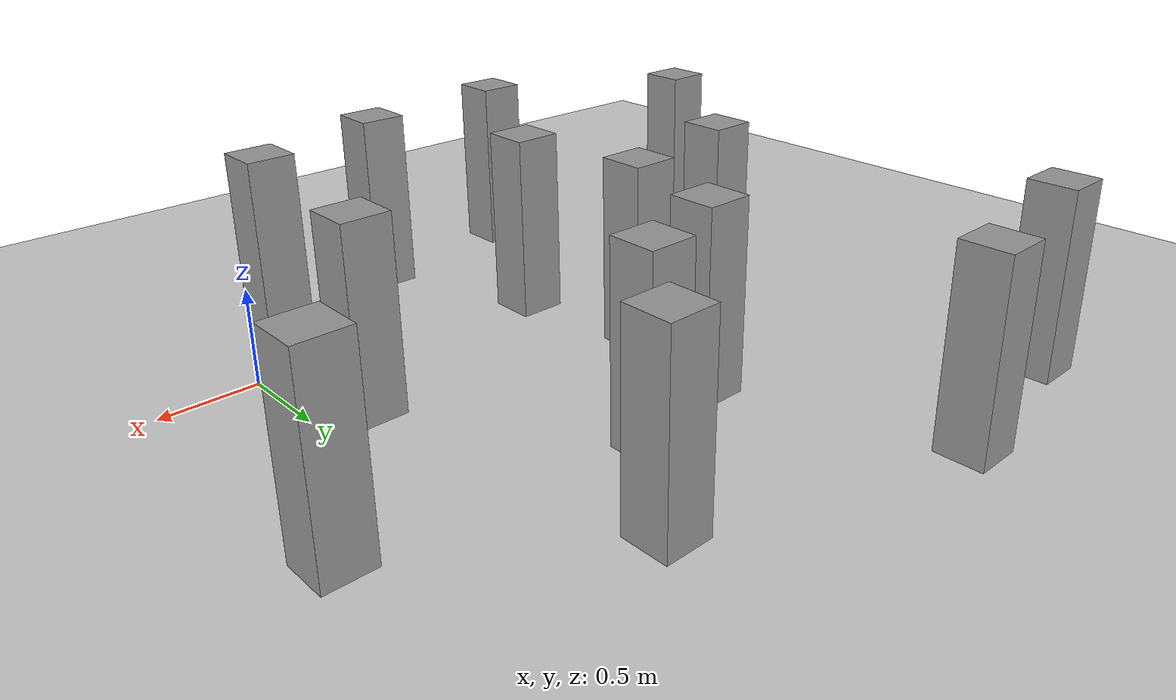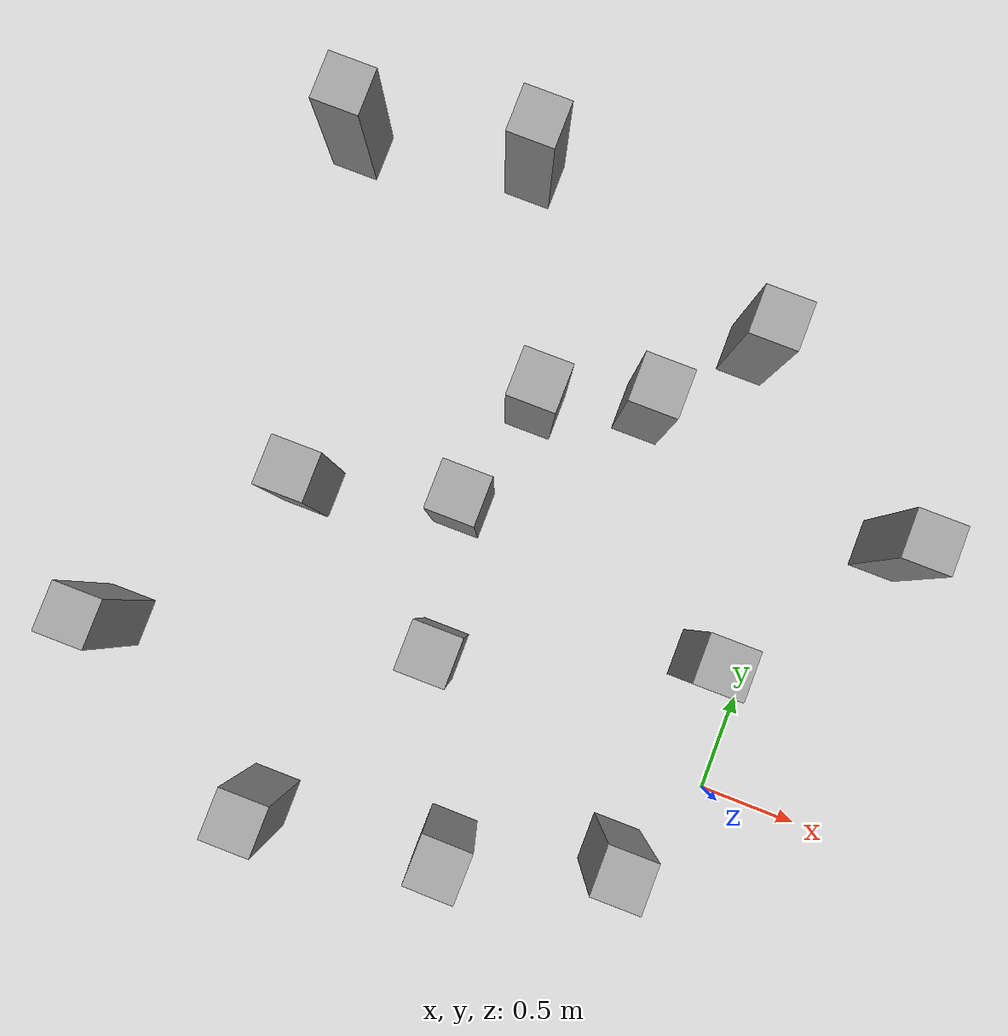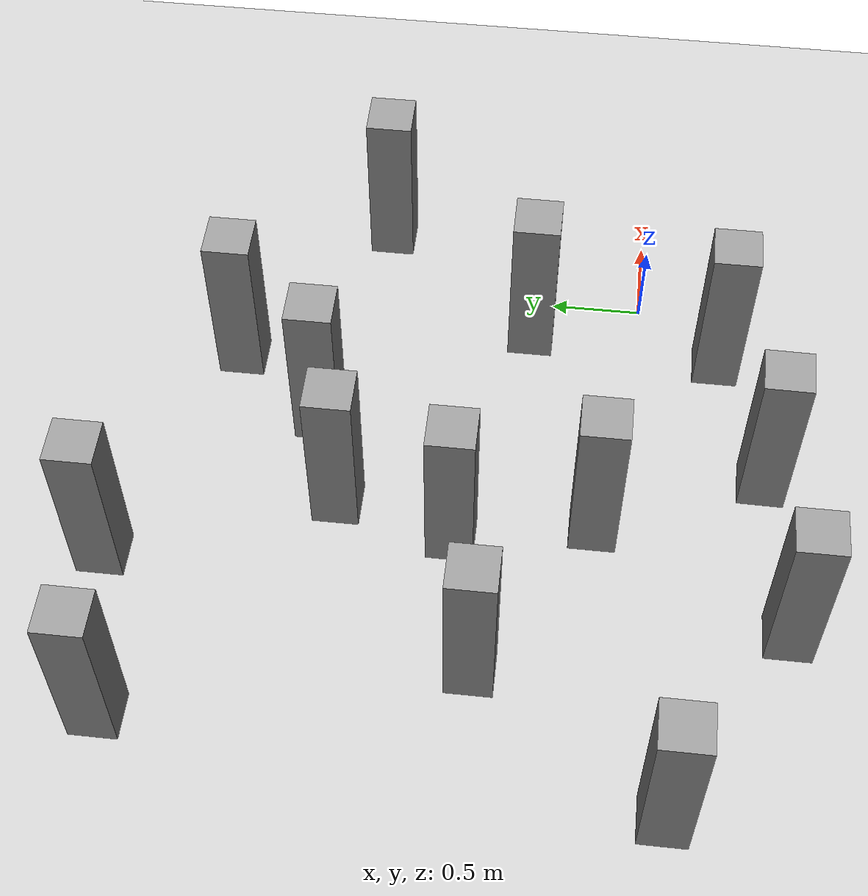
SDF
<sdf version="1.7">
 <world name="default">
  <model name="ground_plane">
   <static>1</static>
   <link name="link">
    <collision name="collision">
     <geometry><plane><normal>0 0 1</normal><size>100 100</size></plane></geometry>
     <surface><friction><ode><mu>100</mu><mu2>50</mu2></ode></friction></surface>
    </collision>
    <visual name="visual">
     <cast_shadows>0</cast_shadows>
     <geometry><plane><normal>0 0 1</normal><size>100 100</size></plane></geometry>
     <material>
      <script><uri>file://media/materials/scripts/gazebo.material</uri><name>Gazebo/Grey</name></script>
     </material>
    </visual>
   </link>
  </model>
  <model name="unit_box">
   <link name="link">
    <inertial>
     <mass>1</mass>
     <inertia>
      <ixx>0.166667</ixx>
      <ixy>0</ixy>
      <ixz>0</ixz>
      <iyy>0.166667</iyy>
      <iyz>0</iyz>
      <izz>0.166667</izz>
     </inertia>
    </inertial>
    <pose>-0.617061 0 -0 0 -0 0</pose>
    <visual name="visual">
     <geometry><box><size>0.25 0.25 1</size></box></geometry>
     <material>
      <script><name>Gazebo/Grey</name><uri>file://media/materials/scripts/gazebo.material</uri></script>
      <shader type="pixel"><normal_map>__default__</normal_map></shader>
      <ambient>0.3 0.3 0.3 1</ambient>
      <diffuse>0.7 0.7 0.7 1</diffuse>
      <specular>0.01 0.01 0.01 1</specular>
      <emissive>0 0 0 1</emissive>
     </material>
    </visual>
    <collision name="collision">
     <geometry><box><size>0.25 0.25 1</size></box></geometry>
     <surface>
      <friction>
       <ode><mu>1</mu><mu2>1</mu2><fdir1>0 0 0</fdir1><slip1>0</slip1><slip2>0</slip2></ode>
       <torsional>
        <coefficient>1</coefficient>
        <patch_radius>0</patch_radius>
        <surface_radius>0</surface_radius>
        <use_patch_radius>1</use_patch_radius>
        <ode><slip>0</slip></ode>
       </torsional>
      </friction>
      <bounce><restitution_coefficient>0</restitution_coefficient><threshold>1e+06</threshold></bounce>
      <contact>
       <collide_without_contact>0</collide_without_contact>
       <collide_without_contact_bitmask>1</collide_without_contact_bitmask>
       <collide_bitmask>1</collide_bitmask>
       <ode>
        <soft_cfm>0</soft_cfm>
        <soft_erp>0.2</soft_erp>
        <kp>1e+13</kp>
        <kd>1</kd>
        <max_vel>0.01</max_vel>
        <min_depth>0</min_depth>
       </ode>
       <bullet>
        <split_impulse>1</split_impulse>
        <split_impulse_penetration_threshold>-0.01</split_impulse_penetration_threshold>
        <soft_cfm>0</soft_cfm>
        <soft_erp>0.2</soft_erp>
        <kp>1e+13</kp>
        <kd>1</kd>
       </bullet>
      </contact>
     </surface>
    </collision>
   </link>
   <static>0</static>
   <pose>0.049892 2.22879 0.5 -2e-06 1e-06 2.7e-05</pose>
  </model>
  <model name="unit_box_clone">
   <link name="link">
    <inertial>
     <mass>1</mass>
     <inertia>
      <ixx>0.166667</ixx>
      <ixy>0</ixy>
      <ixz>0</ixz>
      <iyy>0.166667</iyy>
      <iyz>0</iyz>
      <izz>0.166667</izz>
     </inertia>
    </inertial>
    <pose>-0.617061 0 -0 0 -0 0</pose>
    <visual name="visual">
     <geometry><box><size>0.25 0.25 1</size></box></geometry>
     <material>
      <script><name>Gazebo/Grey</name><uri>file://media/materials/scripts/gazebo.material</uri></script>
      <shader type="pixel"><normal_map>__default__</normal_map></shader>
      <ambient>0.3 0.3 0.3 1</ambient>
      <diffuse>0.7 0.7 0.7 1</diffuse>
      <specular>0.01 0.01 0.01 1</specular>
      <emissive>0 0 0 1</emissive>
     </material>
    </visual>
    <collision name="collision">
     <geometry><box><size>0.25 0.25 1</size></box></geometry>
     <surface>
      <friction>
       <ode><mu>1</mu><mu2>1</mu2><fdir1>0 0 0</fdir1><slip1>0</slip1><slip2>0</slip2></ode>
       <torsional>
        <coefficient>1</coefficient>
        <patch_radius>0</patch_radius>
        <surface_radius>0</surface_radius>
        <use_patch_radius>1</use_patch_radius>
        <ode><slip>0</slip></ode>
       </torsional>
      </friction>
      <bounce><restitution_coefficient>0</restitution_coefficient><threshold>1e+06</threshold></bounce>
      <contact>
       <collide_without_contact>0</collide_without_contact>
       <collide_without_contact_bitmask>1</collide_without_contact_bitmask>
       <collide_bitmask>1</collide_bitmask>
       <ode>
        <soft_cfm>0</soft_cfm>
        <soft_erp>0.2</soft_erp>
        <kp>1e+13</kp>
        <kd>1</kd>
        <max_vel>0.01</max_vel>
        <min_depth>0</min_depth>
       </ode>
       <bullet>
        <split_impulse>1</split_impulse>
        <split_impulse_penetration_threshold>-0.01</split_impulse_penetration_threshold>
        <soft_cfm>0</soft_cfm>
        <soft_erp>0.2</soft_erp>
        <kp>1e+13</kp>
        <kd>1</kd>
       </bullet>
      </contact>
     </surface>
    </collision>
   </link>
   <static>0</static>
   <pose>1.06352 1.49333 0.5 2e-06 -1e-06 6.5e-05</pose>
  </model>
  <model name="unit_box_clone_0">
   <link name="link">
    <inertial>
     <mass>1</mass>
     <inertia>
      <ixx>0.166667</ixx>
      <ixy>0</ixy>
      <ixz>0</ixz>
      <iyy>0.166667</iyy>
      <iyz>0</iyz>
      <izz>0.166667</izz>
     </inertia>
    </inertial>
    <pose>-0.617061 0 -0 0 -0 0</pose>
    <visual name="visual">
     <geometry><box><size>0.25 0.25 1</size></box></geometry>
     <material>
      <script><name>Gazebo/Grey</name><uri>file://media/materials/scripts/gazebo.material</uri></script>
      <shader type="pixel"><normal_map>__default__</normal_map></shader>
      <ambient>0.3 0.3 0.3 1</ambient>
      <diffuse>0.7 0.7 0.7 1</diffuse>
      <specular>0.01 0.01 0.01 1</specular>
      <emissive>0 0 0 1</emissive>
     </material>
    </visual>
    <collision name="collision">
     <geometry><box><size>0.25 0.25 1</size></box></geometry>
     <surface>
      <friction>
       <ode><mu>1</mu><mu2>1</mu2><fdir1>0 0 0</fdir1><slip1>0</slip1><slip2>0</slip2></ode>
       <torsional>
        <coefficient>1</coefficient>
        <patch_radius>0</patch_radius>
        <surface_radius>0</surface_radius>
        <use_patch_radius>1</use_patch_radius>
        <ode><slip>0</slip></ode>
       </torsional>
      </friction>
      <bounce><restitution_coefficient>0</restitution_coefficient><threshold>1e+06</threshold></bounce>
      <contact>
       <collide_without_contact>0</collide_without_contact>
       <collide_without_contact_bitmask>1</collide_without_contact_bitmask>
       <collide_bitmask>1</collide_bitmask>
       <ode>
        <soft_cfm>0</soft_cfm>
        <soft_erp>0.2</soft_erp>
        <kp>1e+13</kp>
        <kd>1</kd>
        <max_vel>0.01</max_vel>
        <min_depth>0</min_depth>
       </ode>
       <bullet>
        <split_impulse>1</split_impulse>
        <split_impulse_penetration_threshold>-0.01</split_impulse_penetration_threshold>
        <soft_cfm>0</soft_cfm>
        <soft_erp>0.2</soft_erp>
        <kp>1e+13</kp>
        <kd>1</kd>
       </bullet>
      </contact>
     </surface>
    </collision>
   </link>
   <static>0</static>
   <pose>0.366947 0.612786 0.500001 -1e-06 -2e-06 3e-05</pose>
  </model>
  <model name="unit_box_clone_0_clone">
   <link name="link">
    <inertial>
     <mass>1</mass>
     <inertia>
      <ixx>0.166667</ixx>
      <ixy>0</ixy>
      <ixz>0</ixz>
      <iyy>0.166667</iyy>
      <iyz>0</iyz>
      <izz>0.166667</izz>
     </inertia>
    </inertial>
    <pose>-0.617061 0 -0 0 -0 0</pose>
    <visual name="visual">
     <geometry><box><size>0.25 0.25 1</size></box></geometry>
     <material>
      <script><name>Gazebo/Grey</name><uri>file://media/materials/scripts/gazebo.material</uri></script>
      <shader type="pixel"><normal_map>__default__</normal_map></shader>
      <ambient>0.3 0.3 0.3 1</ambient>
      <diffuse>0.7 0.7 0.7 1</diffuse>
      <specular>0.01 0.01 0.01 1</specular>
      <emissive>0 0 0 1</emissive>
     </material>
    </visual>
    <collision name="collision">
     <geometry><box><size>0.25 0.25 1</size></box></geometry>
     <surface>
      <friction>
       <ode><mu>1</mu><mu2>1</mu2><fdir1>0 0 0</fdir1><slip1>0</slip1><slip2>0</slip2></ode>
       <torsional>
        <coefficient>1</coefficient>
        <patch_radius>0</patch_radius>
        <surface_radius>0</surface_radius>
        <use_patch_radius>1</use_patch_radius>
        <ode><slip>0</slip></ode>
       </torsional>
      </friction>
      <bounce><restitution_coefficient>0</restitution_coefficient><threshold>1e+06</threshold></bounce>
      <contact>
       <collide_without_contact>0</collide_without_contact>
       <collide_without_contact_bitmask>1</collide_without_contact_bitmask>
       <collide_bitmask>1</collide_bitmask>
       <ode>
        <soft_cfm>0</soft_cfm>
        <soft_erp>0.2</soft_erp>
        <kp>1e+13</kp>
        <kd>1</kd>
        <max_vel>0.01</max_vel>
        <min_depth>0</min_depth>
       </ode>
       <bullet>
        <split_impulse>1</split_impulse>
        <split_impulse_penetration_threshold>-0.01</split_impulse_penetration_threshold>
        <soft_cfm>0</soft_cfm>
        <soft_erp>0.2</soft_erp>
        <kp>1e+13</kp>
        <kd>1</kd>
       </bullet>
      </contact>
     </surface>
    </collision>
   </link>
   <static>0</static>
   <pose>-0.905234 1.55149 0.5 -2e-06 1e-06 2.8e-05</pose>
  </model>
  <model name="unit_box_clone_0_clone_0">
   <link name="link">
    <inertial>
     <mass>1</mass>
     <inertia>
      <ixx>0.166667</ixx>
      <ixy>0</ixy>
      <ixz>0</ixz>
      <iyy>0.166667</iyy>
      <iyz>0</iyz>
      <izz>0.166667</izz>
     </inertia>
    </inertial>
    <pose>-0.617061 0 -0 0 -0 0</pose>
    <visual name="visual">
     <geometry><box><size>0.25 0.25 1</size></box></geometry>
     <material>
      <script><name>Gazebo/Grey</name><uri>file://media/materials/scripts/gazebo.material</uri></script>
      <shader type="pixel"><normal_map>__default__</normal_map></shader>
      <ambient>0.3 0.3 0.3 1</ambient>
      <diffuse>0.7 0.7 0.7 1</diffuse>
      <specular>0.01 0.01 0.01 1</specular>
      <emissive>0 0 0 1</emissive>
     </material>
    </visual>
    <collision name="collision">
     <geometry><box><size>0.25 0.25 1</size></box></geometry>
     <surface>
      <friction>
       <ode><mu>1</mu><mu2>1</mu2><fdir1>0 0 0</fdir1><slip1>0</slip1><slip2>0</slip2></ode>
       <torsional>
        <coefficient>1</coefficient>
        <patch_radius>0</patch_radius>
        <surface_radius>0</surface_radius>
        <use_patch_radius>1</use_patch_radius>
        <ode><slip>0</slip></ode>
       </torsional>
      </friction>
      <bounce><restitution_coefficient>0</restitution_coefficient><threshold>1e+06</threshold></bounce>
      <contact>
       <collide_without_contact>0</collide_without_contact>
       <collide_without_contact_bitmask>1</collide_without_contact_bitmask>
       <collide_bitmask>1</collide_bitmask>
       <ode>
        <soft_cfm>0</soft_cfm>
        <soft_erp>0.2</soft_erp>
        <kp>1e+13</kp>
        <kd>1</kd>
        <max_vel>0.01</max_vel>
        <min_depth>0</min_depth>
       </ode>
       <bullet>
        <split_impulse>1</split_impulse>
        <split_impulse_penetration_threshold>-0.01</split_impulse_penetration_threshold>
        <soft_cfm>0</soft_cfm>
        <soft_erp>0.2</soft_erp>
        <kp>1e+13</kp>
        <kd>1</kd>
       </bullet>
      </contact>
     </surface>
    </collision>
   </link>
   <static>0</static>
   <pose>-1.852 0.745775 0.499998 1e-06 2e-06 7.4e-05</pose>
  </model>
  <model name="unit_box_clone_0_clone_1">
   <link name="link">
    <inertial>
     <mass>1</mass>
     <inertia>
      <ixx>0.166667</ixx>
      <ixy>0</ixy>
      <ixz>0</ixz>
      <iyy>0.166667</iyy>
      <iyz>0</iyz>
      <izz>0.166667</izz>
     </inertia>
    </inertial>
    <pose>-0.617061 0 -0 0 -0 0</pose>
    <visual name="visual">
     <geometry><box><size>0.25 0.25 1</size></box></geometry>
     <material>
      <script><name>Gazebo/Grey</name><uri>file://media/materials/scripts/gazebo.material</uri></script>
      <shader type="pixel"><normal_map>__default__</normal_map></shader>
      <ambient>0.3 0.3 0.3 1</ambient>
      <diffuse>0.7 0.7 0.7 1</diffuse>
      <specular>0.01 0.01 0.01 1</specular>
      <emissive>0 0 0 1</emissive>
     </material>
    </visual>
    <collision name="collision">
     <geometry><box><size>0.25 0.25 1</size></box></geometry>
     <surface>
      <friction>
       <ode><mu>1</mu><mu2>1</mu2><fdir1>0 0 0</fdir1><slip1>0</slip1><slip2>0</slip2></ode>
       <torsional>
        <coefficient>1</coefficient>
        <patch_radius>0</patch_radius>
        <surface_radius>0</surface_radius>
        <use_patch_radius>1</use_patch_radius>
        <ode><slip>0</slip></ode>
       </torsional>
      </friction>
      <bounce><restitution_coefficient>0</restitution_coefficient><threshold>1e+06</threshold></bounce>
      <contact>
       <collide_without_contact>0</collide_without_contact>
       <collide_without_contact_bitmask>1</collide_without_contact_bitmask>
       <collide_bitmask>1</collide_bitmask>
       <ode>
        <soft_cfm>0</soft_cfm>
        <soft_erp>0.2</soft_erp>
        <kp>1e+13</kp>
        <kd>1</kd>
        <max_vel>0.01</max_vel>
        <min_depth>0</min_depth>
       </ode>
       <bullet>
        <split_impulse>1</split_impulse>
        <split_impulse_penetration_threshold>-0.01</split_impulse_penetration_threshold>
        <soft_cfm>0</soft_cfm>
        <soft_erp>0.2</soft_erp>
        <kp>1e+13</kp>
        <kd>1</kd>
       </bullet>
      </contact>
     </surface>
    </collision>
   </link>
   <static>0</static>
   <pose>-2.28004 2.54756 0.499998 -1e-06 2e-06 6.3e-05</pose>
  </model>
  <model name="unit_box_clone_0_clone_2">
   <link name="link">
    <inertial>
     <mass>1</mass>
     <inertia>
      <ixx>0.166667</ixx>
      <ixy>0</ixy>
      <ixz>0</ixz>
      <iyy>0.166667</iyy>
      <iyz>0</iyz>
      <izz>0.166667</izz>
     </inertia>
    </inertial>
    <pose>-0.617061 0 -0 0 -0 0</pose>
    <visual name="visual">
     <geometry><box><size>0.25 0.25 1</size></box></geometry>
     <material>
      <script><name>Gazebo/Grey</name><uri>file://media/materials/scripts/gazebo.material</uri></script>
      <shader type="pixel"><normal_map>__default__</normal_map></shader>
      <ambient>0.3 0.3 0.3 1</ambient>
      <diffuse>0.7 0.7 0.7 1</diffuse>
      <specular>0.01 0.01 0.01 1</specular>
      <emissive>0 0 0 1</emissive>
     </material>
    </visual>
    <collision name="collision">
     <geometry><box><size>0.25 0.25 1</size></box></geometry>
     <surface>
      <friction>
       <ode><mu>1</mu><mu2>1</mu2><fdir1>0 0 0</fdir1><slip1>0</slip1><slip2>0</slip2></ode>
       <torsional>
        <coefficient>1</coefficient>
        <patch_radius>0</patch_radius>
        <surface_radius>0</surface_radius>
        <use_patch_radius>1</use_patch_radius>
        <ode><slip>0</slip></ode>
       </torsional>
      </friction>
      <bounce><restitution_coefficient>0</restitution_coefficient><threshold>1e+06</threshold></bounce>
      <contact>
       <collide_without_contact>0</collide_without_contact>
       <collide_without_contact_bitmask>1</collide_without_contact_bitmask>
       <collide_bitmask>1</collide_bitmask>
       <ode>
        <soft_cfm>0</soft_cfm>
        <soft_erp>0.2</soft_erp>
        <kp>1e+13</kp>
        <kd>1</kd>
        <max_vel>0.01</max_vel>
        <min_depth>0</min_depth>
       </ode>
       <bullet>
        <split_impulse>1</split_impulse>
        <split_impulse_penetration_threshold>-0.01</split_impulse_penetration_threshold>
        <soft_cfm>0</soft_cfm>
        <soft_erp>0.2</soft_erp>
        <kp>1e+13</kp>
        <kd>1</kd>
       </bullet>
      </contact>
     </surface>
    </collision>
   </link>
   <static>0</static>
   <pose>-0.363541 1.7294 0.5 2e-06 -0 7.5e-05</pose>
  </model>
  <model name="unit_box_clone_0_clone_3">
   <link name="link">
    <inertial>
     <mass>1</mass>
     <inertia>
      <ixx>0.166667</ixx>
      <ixy>0</ixy>
      <ixz>0</ixz>
      <iyy>0.166667</iyy>
      <iyz>0</iyz>
      <izz>0.166667</izz>
     </inertia>
    </inertial>
    <pose>-0.617061 0 -0 0 -0 0</pose>
    <visual name="visual">
     <geometry><box><size>0.25 0.25 1</size></box></geometry>
     <material>
      <script><name>Gazebo/Grey</name><uri>file://media/materials/scripts/gazebo.material</uri></script>
      <shader type="pixel"><normal_map>__default__</normal_map></shader>
      <ambient>0.3 0.3 0.3 1</ambient>
      <diffuse>0.7 0.7 0.7 1</diffuse>
      <specular>0.01 0.01 0.01 1</specular>
      <emissive>0 0 0 1</emissive>
     </material>
    </visual>
    <collision name="collision">
     <geometry><box><size>0.25 0.25 1</size></box></geometry>
     <surface>
      <friction>
       <ode><mu>1</mu><mu2>1</mu2><fdir1>0 0 0</fdir1><slip1>0</slip1><slip2>0</slip2></ode>
       <torsional>
        <coefficient>1</coefficient>
        <patch_radius>0</patch_radius>
        <surface_radius>0</surface_radius>
        <use_patch_radius>1</use_patch_radius>
        <ode><slip>0</slip></ode>
       </torsional>
      </friction>
      <bounce><restitution_coefficient>0</restitution_coefficient><threshold>1e+06</threshold></bounce>
      <contact>
       <collide_without_contact>0</collide_without_contact>
       <collide_without_contact_bitmask>1</collide_without_contact_bitmask>
       <collide_bitmask>1</collide_bitmask>
       <ode>
        <soft_cfm>0</soft_cfm>
        <soft_erp>0.2</soft_erp>
        <kp>1e+13</kp>
        <kd>1</kd>
        <max_vel>0.01</max_vel>
        <min_depth>0</min_depth>
       </ode>
       <bullet>
        <split_impulse>1</split_impulse>
        <split_impulse_penetration_threshold>-0.01</split_impulse_penetration_threshold>
        <soft_cfm>0</soft_cfm>
        <soft_erp>0.2</soft_erp>
        <kp>1e+13</kp>
        <kd>1</kd>
       </bullet>
      </contact>
     </surface>
    </collision>
   </link>
   <static>0</static>
   <pose>-0.930949 0.18348 0.500001 1e-06 -1e-06 4.3e-05</pose>
  </model>
  <model name="unit_box_clone_0_clone_2_clone">
   <link name="link">
    <inertial>
     <mass>1</mass>
     <inertia>
      <ixx>0.166667</ixx>
      <ixy>0</ixy>
      <ixz>0</ixz>
      <iyy>0.166667</iyy>
      <iyz>0</iyz>
      <izz>0.166667</izz>
     </inertia>
    </inertial>
    <pose>-0.617061 0 -0 0 -0 0</pose>
    <visual name="visual">
     <geometry><box><size>0.25 0.25 1</size></box></geometry>
     <material>
      <script><name>Gazebo/Grey</name><uri>file://media/materials/scripts/gazebo.material</uri></script>
      <shader type="pixel"><normal_map>__default__</normal_map></shader>
      <ambient>0.3 0.3 0.3 1</ambient>
      <diffuse>0.7 0.7 0.7 1</diffuse>
      <specular>0.01 0.01 0.01 1</specular>
      <emissive>0 0 0 1</emissive>
     </material>
    </visual>
    <collision name="collision">
     <geometry><box><size>0.25 0.25 1</size></box></geometry>
     <surface>
      <friction>
       <ode><mu>1</mu><mu2>1</mu2><fdir1>0 0 0</fdir1><slip1>0</slip1><slip2>0</slip2></ode>
       <torsional>
        <coefficient>1</coefficient>
        <patch_radius>0</patch_radius>
        <surface_radius>0</surface_radius>
        <use_patch_radius>1</use_patch_radius>
        <ode><slip>0</slip></ode>
       </torsional>
      </friction>
      <bounce><restitution_coefficient>0</restitution_coefficient><threshold>1e+06</threshold></bounce>
      <contact>
       <collide_without_contact>0</collide_without_contact>
       <collide_without_contact_bitmask>1</collide_without_contact_bitmask>
       <collide_bitmask>1</collide_bitmask>
       <ode>
        <soft_cfm>0</soft_cfm>
        <soft_erp>0.2</soft_erp>
        <kp>1e+13</kp>
        <kd>1</kd>
        <max_vel>0.01</max_vel>
        <min_depth>0</min_depth>
       </ode>
       <bullet>
        <split_impulse>1</split_impulse>
        <split_impulse_penetration_threshold>-0.01</split_impulse_penetration_threshold>
        <soft_cfm>0</soft_cfm>
        <soft_erp>0.2</soft_erp>
        <kp>1e+13</kp>
        <kd>1</kd>
       </bullet>
      </contact>
     </surface>
    </collision>
   </link>
   <static>0</static>
   <pose>-1.07026 0.924101 0.5 2e-06 -0 7.1e-05</pose>
  </model>
  <model name="unit_box_clone_0_clone_2_clone_0">
   <link name="link">
    <inertial>
     <mass>1</mass>
     <inertia>
      <ixx>0.166667</ixx>
      <ixy>0</ixy>
      <ixz>0</ixz>
      <iyy>0.166667</iyy>
      <iyz>0</iyz>
      <izz>0.166667</izz>
     </inertia>
    </inertial>
    <pose>-0.617061 0 -0 0 -0 0</pose>
    <visual name="visual">
     <geometry><box><size>0.25 0.25 1</size></box></geometry>
     <material>
      <script><name>Gazebo/Grey</name><uri>file://media/materials/scripts/gazebo.material</uri></script>
      <shader type="pixel"><normal_map>__default__</normal_map></shader>
      <ambient>0.3 0.3 0.3 1</ambient>
      <diffuse>0.7 0.7 0.7 1</diffuse>
      <specular>0.01 0.01 0.01 1</specular>
      <emissive>0 0 0 1</emissive>
     </material>
    </visual>
    <collision name="collision">
     <geometry><box><size>0.25 0.25 1</size></box></geometry>
     <surface>
      <friction>
       <ode><mu>1</mu><mu2>1</mu2><fdir1>0 0 0</fdir1><slip1>0</slip1><slip2>0</slip2></ode>
       <torsional>
        <coefficient>1</coefficient>
        <patch_radius>0</patch_radius>
        <surface_radius>0</surface_radius>
        <use_patch_radius>1</use_patch_radius>
        <ode><slip>0</slip></ode>
       </torsional>
      </friction>
      <bounce><restitution_coefficient>0</restitution_coefficient><threshold>1e+06</threshold></bounce>
      <contact>
       <collide_without_contact>0</collide_without_contact>
       <collide_without_contact_bitmask>1</collide_without_contact_bitmask>
       <collide_bitmask>1</collide_bitmask>
       <ode>
        <soft_cfm>0</soft_cfm>
        <soft_erp>0.2</soft_erp>
        <kp>1e+13</kp>
        <kd>1</kd>
        <max_vel>0.01</max_vel>
        <min_depth>0</min_depth>
       </ode>
       <bullet>
        <split_impulse>1</split_impulse>
        <split_impulse_penetration_threshold>-0.01</split_impulse_penetration_threshold>
        <soft_cfm>0</soft_cfm>
        <soft_erp>0.2</soft_erp>
        <kp>1e+13</kp>
        <kd>1</kd>
       </bullet>
      </contact>
     </surface>
    </collision>
   </link>
   <static>0</static>
   <pose>-1.35376 2.72909 0.500001 -1e-06 -2e-06 2.9e-05</pose>
  </model>
  <model name="unit_box_clone_0_clone_3_clone">
   <link name="link">
    <inertial>
     <mass>1</mass>
     <inertia>
      <ixx>0.166667</ixx>
      <ixy>0</ixy>
      <ixz>0</ixz>
      <iyy>0.166667</iyy>
      <iyz>0</iyz>
      <izz>0.166667</izz>
     </inertia>
    </inertial>
    <pose>-0.617061 0 -0 0 -0 0</pose>
    <visual name="visual">
     <geometry><box><size>0.25 0.25 1</size></box></geometry>
     <material>
      <script><name>Gazebo/Grey</name><uri>file://media/materials/scripts/gazebo.material</uri></script>
      <shader type="pixel"><normal_map>__default__</normal_map></shader>
      <ambient>0.3 0.3 0.3 1</ambient>
      <diffuse>0.7 0.7 0.7 1</diffuse>
      <specular>0.01 0.01 0.01 1</specular>
      <emissive>0 0 0 1</emissive>
     </material>
    </visual>
    <collision name="collision">
     <geometry><box><size>0.25 0.25 1</size></box></geometry>
     <surface>
      <friction>
       <ode><mu>1</mu><mu2>1</mu2><fdir1>0 0 0</fdir1><slip1>0</slip1><slip2>0</slip2></ode>
       <torsional>
        <coefficient>1</coefficient>
        <patch_radius>0</patch_radius>
        <surface_radius>0</surface_radius>
        <use_patch_radius>1</use_patch_radius>
        <ode><slip>0</slip></ode>
       </torsional>
      </friction>
      <bounce><restitution_coefficient>0</restitution_coefficient><threshold>1e+06</threshold></bounce>
      <contact>
       <collide_without_contact>0</collide_without_contact>
       <collide_without_contact_bitmask>1</collide_without_contact_bitmask>
       <collide_bitmask>1</collide_bitmask>
       <ode>
        <soft_cfm>0</soft_cfm>
        <soft_erp>0.2</soft_erp>
        <kp>1e+13</kp>
        <kd>1</kd>
        <max_vel>0.01</max_vel>
        <min_depth>0</min_depth>
       </ode>
       <bullet>
        <split_impulse>1</split_impulse>
        <split_impulse_penetration_threshold>-0.01</split_impulse_penetration_threshold>
        <soft_cfm>0</soft_cfm>
        <soft_erp>0.2</soft_erp>
        <kp>1e+13</kp>
        <kd>1</kd>
       </bullet>
      </contact>
     </surface>
    </collision>
   </link>
   <static>0</static>
   <pose>-0.544838 -0.70938 0.499998 1e-06 2e-06 -0.01107</pose>
  </model>
  <model name="unit_box_clone_0_clone_3_clone_0">
   <link name="link">
    <inertial>
     <mass>1</mass>
     <inertia>
      <ixx>0.166667</ixx>
      <ixy>0</ixy>
      <ixz>0</ixz>
      <iyy>0.166667</iyy>
      <iyz>0</iyz>
      <izz>0.166667</izz>
     </inertia>
    </inertial>
    <pose>-0.617061 0 -0 0 -0 0</pose>
    <visual name="visual">
     <geometry><box><size>0.25 0.25 1</size></box></geometry>
     <material>
      <script><name>Gazebo/Grey</name><uri>file://media/materials/scripts/gazebo.material</uri></script>
      <shader type="pixel"><normal_map>__default__</normal_map></shader>
      <ambient>0.3 0.3 0.3 1</ambient>
      <diffuse>0.7 0.7 0.7 1</diffuse>
      <specular>0.01 0.01 0.01 1</specular>
      <emissive>0 0 0 1</emissive>
     </material>
    </visual>
    <collision name="collision">
     <geometry><box><size>0.25 0.25 1</size></box></geometry>
     <surface>
      <friction>
       <ode><mu>1</mu><mu2>1</mu2><fdir1>0 0 0</fdir1><slip1>0</slip1><slip2>0</slip2></ode>
       <torsional>
        <coefficient>1</coefficient>
        <patch_radius>0</patch_radius>
        <surface_radius>0</surface_radius>
        <use_patch_radius>1</use_patch_radius>
        <ode><slip>0</slip></ode>
       </torsional>
      </friction>
      <bounce><restitution_coefficient>0</restitution_coefficient><threshold>1e+06</threshold></bounce>
      <contact>
       <collide_without_contact>0</collide_without_contact>
       <collide_without_contact_bitmask>1</collide_without_contact_bitmask>
       <collide_bitmask>1</collide_bitmask>
       <ode>
        <soft_cfm>0</soft_cfm>
        <soft_erp>0.2</soft_erp>
        <kp>1e+13</kp>
        <kd>1</kd>
        <max_vel>0.01</max_vel>
        <min_depth>0</min_depth>
       </ode>
       <bullet>
        <split_impulse>1</split_impulse>
        <split_impulse_penetration_threshold>-0.01</split_impulse_penetration_threshold>
        <soft_cfm>0</soft_cfm>
        <soft_erp>0.2</soft_erp>
        <kp>1e+13</kp>
        <kd>1</kd>
       </bullet>
      </contact>
     </surface>
    </collision>
   </link>
   <static>0</static>
   <pose>0.260598 -0.444958 0.499998 -1e-06 2e-06 -4e-06</pose>
  </model>
  <model name="unit_box_clone_0_clone_3_clone_1">
   <link name="link">
    <inertial>
     <mass>1</mass>
     <inertia>
      <ixx>0.166667</ixx>
      <ixy>0</ixy>
      <ixz>0</ixz>
      <iyy>0.166667</iyy>
      <iyz>0</iyz>
      <izz>0.166667</izz>
     </inertia>
    </inertial>
    <pose>-0.617061 0 -0 0 -0 0</pose>
    <visual name="visual">
     <geometry><box><size>0.25 0.25 1</size></box></geometry>
     <material>
      <script><name>Gazebo/Grey</name><uri>file://media/materials/scripts/gazebo.material</uri></script>
      <shader type="pixel"><normal_map>__default__</normal_map></shader>
      <ambient>0.3 0.3 0.3 1</ambient>
      <diffuse>0.7 0.7 0.7 1</diffuse>
      <specular>0.01 0.01 0.01 1</specular>
      <emissive>0 0 0 1</emissive>
     </material>
    </visual>
    <collision name="collision">
     <geometry><box><size>0.25 0.25 1</size></box></geometry>
     <surface>
      <friction>
       <ode><mu>1</mu><mu2>1</mu2><fdir1>0 0 0</fdir1><slip1>0</slip1><slip2>0</slip2></ode>
       <torsional>
        <coefficient>1</coefficient>
        <patch_radius>0</patch_radius>
        <surface_radius>0</surface_radius>
        <use_patch_radius>1</use_patch_radius>
        <ode><slip>0</slip></ode>
       </torsional>
      </friction>
      <bounce><restitution_coefficient>0</restitution_coefficient><threshold>1e+06</threshold></bounce>
      <contact>
       <collide_without_contact>0</collide_without_contact>
       <collide_without_contact_bitmask>1</collide_without_contact_bitmask>
       <collide_bitmask>1</collide_bitmask>
       <ode>
        <soft_cfm>0</soft_cfm>
        <soft_erp>0.2</soft_erp>
        <kp>1e+13</kp>
        <kd>1</kd>
        <max_vel>0.01</max_vel>
        <min_depth>0</min_depth>
       </ode>
       <bullet>
        <split_impulse>1</split_impulse>
        <split_impulse_penetration_threshold>-0.01</split_impulse_penetration_threshold>
        <soft_cfm>0</soft_cfm>
        <soft_erp>0.2</soft_erp>
        <kp>1e+13</kp>
        <kd>1</kd>
       </bullet>
      </contact>
     </surface>
    </collision>
   </link>
   <static>0</static>
   <pose>-1.48143 -0.839106 0.499998 -1e-06 3e-06 5.5e-05</pose>
  </model>
  <model name="unit_box_clone_0_clone_3_clone_2">
   <link name="link">
    <inertial>
     <mass>1</mass>
     <inertia>
      <ixx>0.166667</ixx>
      <ixy>0</ixy>
      <ixz>0</ixz>
      <iyy>0.166667</iyy>
      <iyz>0</iyz>
      <izz>0.166667</izz>
     </inertia>
    </inertial>
    <pose>-0.617061 0 -0 0 -0 0</pose>
    <visual name="visual">
     <geometry><box><size>0.25 0.25 1</size></box></geometry>
     <material>
      <script><name>Gazebo/Grey</name><uri>file://media/materials/scripts/gazebo.material</uri></script>
      <shader type="pixel"><normal_map>__default__</normal_map></shader>
      <ambient>0.3 0.3 0.3 1</ambient>
      <diffuse>0.7 0.7 0.7 1</diffuse>
      <specular>0.01 0.01 0.01 1</specular>
      <emissive>0 0 0 1</emissive>
     </material>
    </visual>
    <collision name="collision">
     <geometry><box><size>0.25 0.25 1</size></box></geometry>
     <surface>
      <friction>
       <ode><mu>1</mu><mu2>1</mu2><fdir1>0 0 0</fdir1><slip1>0</slip1><slip2>0</slip2></ode>
       <torsional>
        <coefficient>1</coefficient>
        <patch_radius>0</patch_radius>
        <surface_radius>0</surface_radius>
        <use_patch_radius>1</use_patch_radius>
        <ode><slip>0</slip></ode>
       </torsional>
      </friction>
      <bounce><restitution_coefficient>0</restitution_coefficient><threshold>1e+06</threshold></bounce>
      <contact>
       <collide_without_contact>0</collide_without_contact>
       <collide_without_contact_bitmask>1</collide_without_contact_bitmask>
       <collide_bitmask>1</collide_bitmask>
       <ode>
        <soft_cfm>0</soft_cfm>
        <soft_erp>0.2</soft_erp>
        <kp>1e+13</kp>
        <kd>1</kd>
        <max_vel>0.01</max_vel>
        <min_depth>0</min_depth>
       </ode>
       <bullet>
        <split_impulse>1</split_impulse>
        <split_impulse_penetration_threshold>-0.01</split_impulse_penetration_threshold>
        <soft_cfm>0</soft_cfm>
        <soft_erp>0.2</soft_erp>
        <kp>1e+13</kp>
        <kd>1</kd>
       </bullet>
      </contact>
     </surface>
    </collision>
   </link>
   <static>0</static>
   <pose>-2.54188 -0.240856 0.5 -2e-06 -0 1e-05</pose>
  </model>
 </world>
</sdf>
